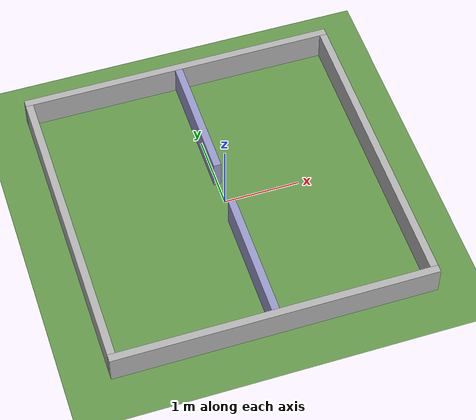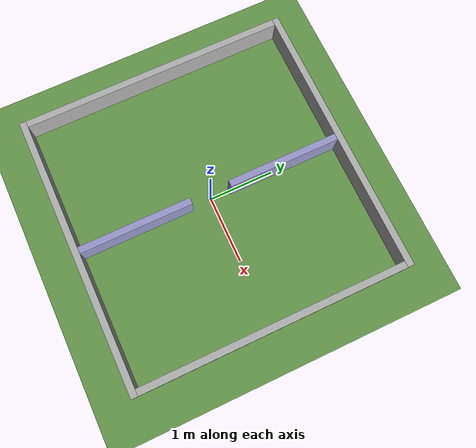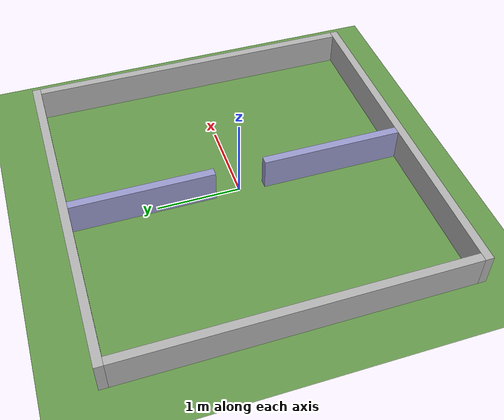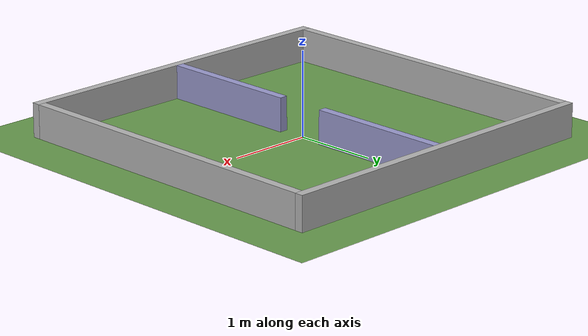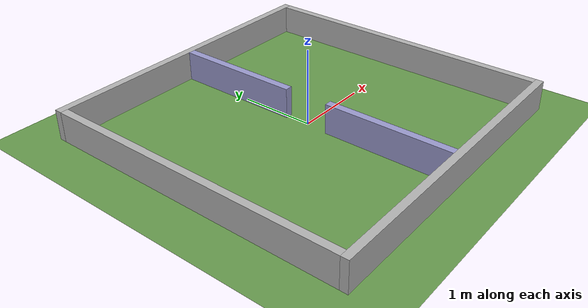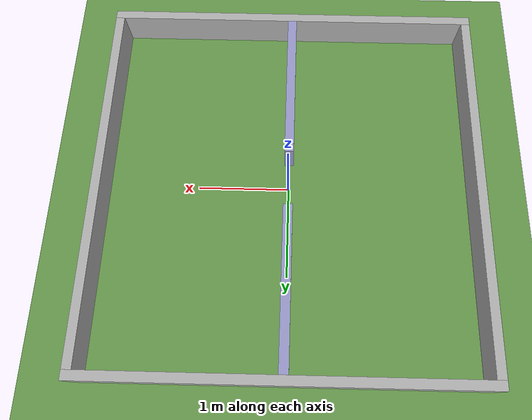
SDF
<?xml version="1.0" ?>
<sdf version="1.8">
  <world name="simple_room">

    <physics name="10ms" type="ignored">
      <max_step_size>0.01</max_step_size>
      <real_time_factor>1.0</real_time_factor>
    </physics>

    <plugin filename="gz-sim-physics-system"          name="gz::sim::systems::Physics"/>
    <plugin filename="gz-sim-sensors-system"           name="gz::sim::systems::Sensors">
      <render_engine>ogre2</render_engine>
    </plugin>
    <plugin filename="gz-sim-scene-broadcaster-system" name="gz::sim::systems::SceneBroadcaster"/>
    <plugin filename="gz-sim-user-commands-system"     name="gz::sim::systems::UserCommands"/>

    <light type="directional" name="sun">
      <cast_shadows>true</cast_shadows>
      <pose>0 0 5 0 0 0</pose>
      <diffuse>0.8 0.8 0.8 1</diffuse>
      <specular>0.2 0.2 0.2 1</specular>
      <attenuation>
        <range>100</range>
        <constant>0.9</constant>
        <linear>0.01</linear>
        <quadratic>0.001</quadratic>
      </attenuation>
      <direction>-0.5 0.1 -0.9</direction>
    </light>

    <model name="ground_plane">
      <static>true</static>
      <link name="link">
        <collision name="collision">
          <geometry><plane><normal>0 0 1</normal><size>10 10</size></plane></geometry>
        </collision>
        <visual name="visual">
          <geometry><plane><normal>0 0 1</normal><size>10 10</size></plane></geometry>
          <material>
            <ambient>0.4 0.6 0.3 1</ambient>
            <diffuse>0.4 0.6 0.3 1</diffuse>
          </material>
        </visual>
      </link>
    </model>

    <model name="north_wall">
      <static>true</static>
      <pose>0 2.05 0.2 0 0 0</pose>
      <link name="link">
        <collision name="collision">
          <geometry><box><size>4.2 0.1 0.4</size></box></geometry>
        </collision>
        <visual name="visual">
          <geometry><box><size>4.2 0.1 0.4</size></box></geometry>
          <material><ambient>0.7 0.7 0.7 1</ambient><diffuse>0.7 0.7 0.7 1</diffuse></material>
        </visual>
      </link>
    </model>

    <model name="south_wall">
      <static>true</static>
      <pose>0 -2.05 0.2 0 0 0</pose>
      <link name="link">
        <collision name="collision">
          <geometry><box><size>4.2 0.1 0.4</size></box></geometry>
        </collision>
        <visual name="visual">
          <geometry><box><size>4.2 0.1 0.4</size></box></geometry>
          <material><ambient>0.7 0.7 0.7 1</ambient><diffuse>0.7 0.7 0.7 1</diffuse></material>
        </visual>
      </link>
    </model>

    <model name="west_wall">
      <static>true</static>
      <pose>-2.05 0 0.2 0 0 0</pose>
      <link name="link">
        <collision name="collision">
          <geometry><box><size>0.1 4.0 0.4</size></box></geometry>
        </collision>
        <visual name="visual">
          <geometry><box><size>0.1 4.0 0.4</size></box></geometry>
          <material><ambient>0.7 0.7 0.7 1</ambient><diffuse>0.7 0.7 0.7 1</diffuse></material>
        </visual>
      </link>
    </model>

    <model name="east_wall">
      <static>true</static>
      <pose>2.05 0 0.2 0 0 0</pose>
      <link name="link">
        <collision name="collision">
          <geometry><box><size>0.1 4.0 0.4</size></box></geometry>
        </collision>
        <visual name="visual">
          <geometry><box><size>0.1 4.0 0.4</size></box></geometry>
          <material><ambient>0.7 0.7 0.7 1</ambient><diffuse>0.7 0.7 0.7 1</diffuse></material>
        </visual>
      </link>
    </model>

    <model name="interior_wall_south">
      <static>true</static>
      <pose>0 -1.15 0.2 0 0 0</pose>
      <link name="link">
        <collision name="collision">
          <geometry><box><size>0.1 1.7 0.4</size></box></geometry>
        </collision>
        <visual name="visual">
          <geometry><box><size>0.1 1.7 0.4</size></box></geometry>
          <material><ambient>0.6 0.6 0.8 1</ambient><diffuse>0.6 0.6 0.8 1</diffuse></material>
        </visual>
      </link>
    </model>

    <model name="interior_wall_north">
      <static>true</static>
      <pose>0 1.15 0.2 0 0 0</pose>
      <link name="link">
        <collision name="collision">
          <geometry><box><size>0.1 1.7 0.4</size></box></geometry>
        </collision>
        <visual name="visual">
          <geometry><box><size>0.1 1.7 0.4</size></box></geometry>
          <material><ambient>0.6 0.6 0.8 1</ambient><diffuse>0.6 0.6 0.8 1</diffuse></material>
        </visual>
      </link>
    </model>

  </world>
</sdf>
